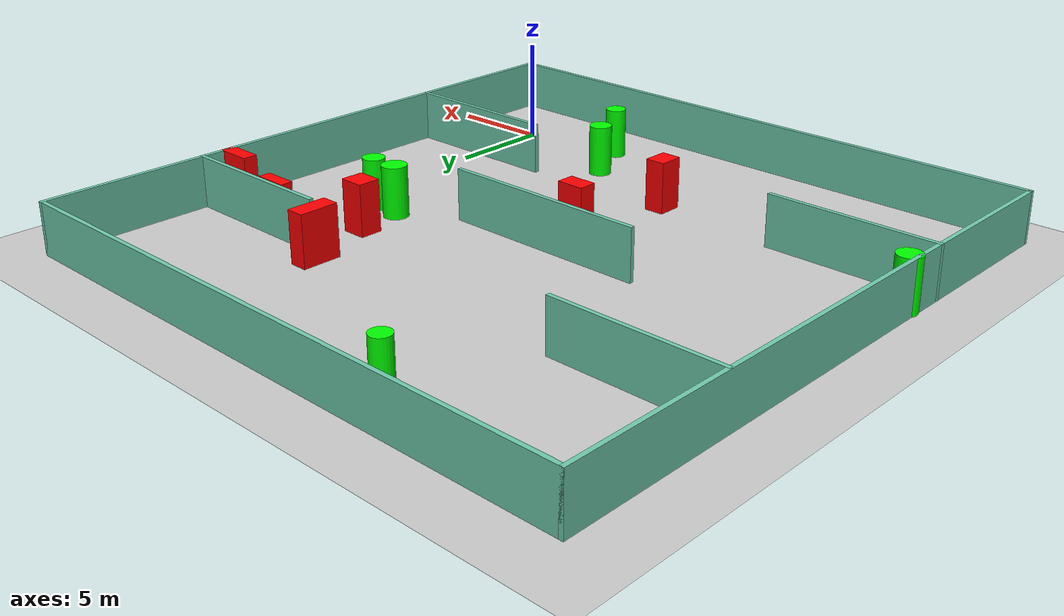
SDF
<sdf version="1.7">
 <world name="default">
  <light name="sun" type="directional">
   <pose>0 0 10 0 -0 0</pose>
   <diffuse>0.8 0.8 0.8 1</diffuse>
   <specular>0.2 0.2 0.2 1</specular>
   <attenuation>
    <range>1000</range>
    <constant>0.9</constant>
    <linear>0.01</linear>
    <quadratic>0.001</quadratic>
   </attenuation>
   <direction>-0.5 0.1 -0.9</direction>
   <spot><inner_angle>0</inner_angle><outer_angle>0</outer_angle><falloff>0</falloff></spot>
  </light>
  <model name="ground_plane">
   <static>1</static>
   <link name="link">
    <collision name="collision">
     <geometry><plane><normal>0 0 1</normal><size>100 100</size></plane></geometry>
     <surface>
      <contact><collide_bitmask>65535</collide_bitmask></contact>
      <friction><ode><mu>100</mu><mu2>50</mu2></ode></friction>
     </surface>
    </collision>
    <visual name="visual">
     <cast_shadows>0</cast_shadows>
     <geometry><plane><normal>0 0 1</normal><size>100 100</size></plane></geometry>
     <material>
      <script><uri>file://media/materials/scripts/gazebo.material</uri><name>Gazebo/Grey</name></script>
     </material>
    </visual>
   </link>
  </model>
  <gravity>0 0 -9.8</gravity>
  <magnetic_field>6e-06 2.3e-05 -4.2e-05</magnetic_field>
  <atmosphere type="adiabatic"/>
  <physics type="ode">
   <max_step_size>0.001</max_step_size>
   <real_time_factor>1</real_time_factor>
   <real_time_update_rate>1000</real_time_update_rate>
  </physics>
  <scene><ambient>0.4 0.4 0.4 1</ambient><background>0.7 0.7 0.7 1</background><shadows>1</shadows></scene>
  <spherical_coordinates>
   <surface_model>EARTH_WGS84</surface_model>
   <latitude_deg>0</latitude_deg>
   <longitude_deg>0</longitude_deg>
   <elevation>0</elevation>
   <heading_deg>0</heading_deg>
  </spherical_coordinates>
  <model name="my_base_walls">
   <link name="Wall_10">
    <collision name="Wall_10_Collision">
     <geometry><box><size>8.2 0.2 2.5</size></box></geometry>
     <pose>0 0 1.25 0 -0 0</pose>
    </collision>
    <visual name="Wall_10_Visual">
     <pose>0 0 1.25 0 -0 0</pose>
     <geometry><box><size>8.2 0.2 2.5</size></box></geometry>
     <material>
      <script><uri>file://media/materials/scripts/gazebo.material</uri><name>Gazebo/Grey</name></script>
      <ambient>0.435294 0.796078 0.67451 1</ambient>
     </material>
     <meta><layer>0</layer></meta>
    </visual>
    <pose>-11 -7 0 0 -0 0</pose>
   </link>
   <link name="Wall_12">
    <collision name="Wall_12_Collision">
     <geometry><box><size>8.2 0.2 2.5</size></box></geometry>
     <pose>0 0 1.25 0 -0 0</pose>
    </collision>
    <visual name="Wall_12_Visual">
     <pose>0 0 1.25 0 -0 0</pose>
     <geometry><box><size>8.2 0.2 2.5</size></box></geometry>
     <material>
      <script><uri>file://media/materials/scripts/gazebo.material</uri><name>Gazebo/Grey</name></script>
      <ambient>0.435294 0.796078 0.67451 1</ambient>
     </material>
     <meta><layer>0</layer></meta>
    </visual>
    <pose>-11 7 0 0 -0 0</pose>
   </link>
   <link name="Wall_14">
    <collision name="Wall_14_Collision">
     <geometry><box><size>8.2 0.2 2.5</size></box></geometry>
     <pose>0 0 1.25 0 -0 0</pose>
    </collision>
    <visual name="Wall_14_Visual">
     <pose>0 0 1.25 0 -0 0</pose>
     <geometry><box><size>8.2 0.2 2.5</size></box></geometry>
     <material>
      <script><uri>file://media/materials/scripts/gazebo.material</uri><name>Gazebo/Grey</name></script>
      <ambient>0.435294 0.796078 0.67451 1</ambient>
     </material>
     <meta><layer>0</layer></meta>
    </visual>
    <pose>11 7 0 0 -0 3.14159</pose>
   </link>
   <link name="Wall_16">
    <collision name="Wall_16_Collision">
     <geometry><box><size>10.2 0.2 2.5</size></box></geometry>
     <pose>0 0 1.25 0 -0 0</pose>
    </collision>
    <visual name="Wall_16_Visual">
     <pose>0 0 1.25 0 -0 0</pose>
     <geometry><box><size>10.2 0.2 2.5</size></box></geometry>
     <material>
      <script><uri>file://media/materials/scripts/gazebo.material</uri><name>Gazebo/Grey</name></script>
      <ambient>0.435294 0.796078 0.67451 1</ambient>
     </material>
     <meta><layer>0</layer></meta>
    </visual>
    <pose>0 0 0 0 -0 3.14159</pose>
   </link>
   <link name="Wall_2">
    <collision name="Wall_2_Collision">
     <geometry><box><size>30.2 0.2 2.5</size></box></geometry>
     <pose>0 0 1.25 0 -0 0</pose>
    </collision>
    <visual name="Wall_2_Visual">
     <pose>0 0 1.25 0 -0 0</pose>
     <geometry><box><size>30.2 0.2 2.5</size></box></geometry>
     <material>
      <script><uri>file://media/materials/scripts/gazebo.material</uri><name>Gazebo/Grey</name></script>
      <ambient>0.435294 0.796078 0.67451 1</ambient>
     </material>
     <meta><layer>0</layer></meta>
    </visual>
    <pose>0 -15 0 0 -0 3.14159</pose>
   </link>
   <link name="Wall_3">
    <collision name="Wall_3_Collision">
     <geometry><box><size>30.2 0.2 2.5</size></box></geometry>
     <pose>0 0 1.25 0 -0 0</pose>
    </collision>
    <visual name="Wall_3_Visual">
     <pose>0 0 1.25 0 -0 0</pose>
     <geometry><box><size>30.2 0.2 2.5</size></box></geometry>
     <material>
      <script><uri>file://media/materials/scripts/gazebo.material</uri><name>Gazebo/Grey</name></script>
      <ambient>0.435294 0.796078 0.67451 1</ambient>
     </material>
     <meta><layer>0</layer></meta>
    </visual>
    <pose>-15 0 0 0 -0 1.5708</pose>
   </link>
   <link name="Wall_4">
    <collision name="Wall_4_Collision">
     <geometry><box><size>30.2 0.2 2.5</size></box></geometry>
     <pose>0 0 1.25 0 -0 0</pose>
    </collision>
    <visual name="Wall_4_Visual">
     <pose>0 0 1.25 0 -0 0</pose>
     <geometry><box><size>30.2 0.2 2.5</size></box></geometry>
     <material>
      <script><uri>file://media/materials/scripts/gazebo.material</uri><name>Gazebo/Grey</name></script>
      <ambient>0.435294 0.796078 0.67451 1</ambient>
     </material>
     <meta><layer>0</layer></meta>
    </visual>
    <pose>0 15 0 0 -0 0</pose>
   </link>
   <link name="Wall_6">
    <collision name="Wall_6_Collision">
     <geometry><box><size>30.2 0.2 2.5</size></box></geometry>
     <pose>0 0 1.25 0 -0 0</pose>
    </collision>
    <visual name="Wall_6_Visual">
     <pose>0 0 1.25 0 -0 0</pose>
     <geometry><box><size>30.2 0.2 2.5</size></box></geometry>
     <material>
      <script><uri>file://media/materials/scripts/gazebo.material</uri><name>Gazebo/Grey</name></script>
      <ambient>0.435294 0.796078 0.67451 1</ambient>
     </material>
     <meta><layer>0</layer></meta>
    </visual>
    <pose>15 0 0 0 -0 1.5708</pose>
   </link>
   <link name="Wall_8">
    <collision name="Wall_8_Collision">
     <geometry><box><size>8.2 0.2 2.5</size></box></geometry>
     <pose>0 0 1.25 0 -0 0</pose>
    </collision>
    <visual name="Wall_8_Visual">
     <pose>0 0 1.25 0 -0 0</pose>
     <geometry><box><size>8.2 0.2 2.5</size></box></geometry>
     <material>
      <script><uri>file://media/materials/scripts/gazebo.material</uri><name>Gazebo/Grey</name></script>
      <ambient>0.435294 0.796078 0.67451 1</ambient>
     </material>
     <meta><layer>0</layer></meta>
    </visual>
    <pose>11 -7 0 0 -0 3.14159</pose>
   </link>
   <static>1</static>
   <pose>-11 11 0 0 -0 0</pose>
  </model>
  <model name="cylinder1">
   <static>1</static>
   <link name="link">
    <inertial>
     <mass>1</mass>
     <inertia><ixx>0.5</ixx><ixy>0</ixy><ixz>0</ixz><iyy>0.5</iyy><iyz>0</iyz><izz>1</izz></inertia>
    </inertial>
    <collision name="collision">
     <geometry><cylinder><radius>0.5547875246228504</radius><length>2.5</length></cylinder></geometry>
    </collision>
    <visual name="visual">
     <geometry><cylinder><radius>0.5547875246228504</radius><length>2.5</length></cylinder></geometry>
     <material>
      <ambient>0 1 0 1</ambient>
      <diffuse>0 1 0 1</diffuse>
      <specular>0.1 0.1 0.1 1</specular>
      <emissive>0 0 0 0</emissive>
     </material>
    </visual>
   </link>
   <pose>-6.4500949915466315 1.8690730219400358 1.25 0 0 0</pose>
  </model>
  <model name="cylinder2">
   <static>1</static>
   <link name="link">
    <inertial>
     <mass>1</mass>
     <inertia><ixx>0.5</ixx><ixy>0</ixy><ixz>0</ixz><iyy>0.5</iyy><iyz>0</iyz><izz>1</izz></inertia>
    </inertial>
    <collision name="collision">
     <geometry><cylinder><radius>0.5748632213571063</radius><length>2.5</length></cylinder></geometry>
    </collision>
    <visual name="visual">
     <geometry><cylinder><radius>0.5748632213571063</radius><length>2.5</length></cylinder></geometry>
     <material>
      <ambient>0 1 0 1</ambient>
      <diffuse>0 1 0 1</diffuse>
      <specular>0.1 0.1 0.1 1</specular>
      <emissive>0 0 0 0</emissive>
     </material>
    </visual>
   </link>
   <pose>-25.60420716865199 5.7057589921864675 1.25 0 0 0</pose>
  </model>
  <model name="cylinder3">
   <static>1</static>
   <link name="link">
    <inertial>
     <mass>1</mass>
     <inertia><ixx>0.5</ixx><ixy>0</ixy><ixz>0</ixz><iyy>0.5</iyy><iyz>0</iyz><izz>1</izz></inertia>
    </inertial>
    <collision name="collision">
     <geometry><cylinder><radius>0.5364596516222858</radius><length>2.5</length></cylinder></geometry>
    </collision>
    <visual name="visual">
     <geometry><cylinder><radius>0.5364596516222858</radius><length>2.5</length></cylinder></geometry>
     <material>
      <ambient>0 1 0 1</ambient>
      <diffuse>0 1 0 1</diffuse>
      <specular>0.1 0.1 0.1 1</specular>
      <emissive>0 0 0 0</emissive>
     </material>
    </visual>
   </link>
   <pose>-1.9188158538743778 12.695340791345279 1.25 0 0 0</pose>
  </model>
  <model name="cylinder4">
   <static>1</static>
   <link name="link">
    <inertial>
     <mass>1</mass>
     <inertia><ixx>0.5</ixx><ixy>0</ixy><ixz>0</ixz><iyy>0.5</iyy><iyz>0</iyz><izz>1</izz></inertia>
    </inertial>
    <collision name="collision">
     <geometry><cylinder><radius>0.47571626258464217</radius><length>2.5</length></cylinder></geometry>
    </collision>
    <visual name="visual">
     <geometry><cylinder><radius>0.47571626258464217</radius><length>2.5</length></cylinder></geometry>
     <material>
      <ambient>0 1 0 1</ambient>
      <diffuse>0 1 0 1</diffuse>
      <specular>0.1 0.1 0.1 1</specular>
      <emissive>0 0 0 0</emissive>
     </material>
    </visual>
   </link>
   <pose>-15.849725858109826 24.152983453723348 1.25 0 0 0</pose>
  </model>
  <model name="cylinder5">
   <static>1</static>
   <link name="link">
    <inertial>
     <mass>1</mass>
     <inertia><ixx>0.5</ixx><ixy>0</ixy><ixz>0</ixz><iyy>0.5</iyy><iyz>0</iyz><izz>1</izz></inertia>
    </inertial>
    <collision name="collision">
     <geometry><cylinder><radius>0.5054040455717614</radius><length>2.5</length></cylinder></geometry>
    </collision>
    <visual name="visual">
     <geometry><cylinder><radius>0.5054040455717614</radius><length>2.5</length></cylinder></geometry>
     <material>
      <ambient>0 1 0 1</ambient>
      <diffuse>0 1 0 1</diffuse>
      <specular>0.1 0.1 0.1 1</specular>
      <emissive>0 0 0 0</emissive>
     </material>
    </visual>
   </link>
   <pose>-5.24151063140804 -0.7206314253814798 1.25 0 0 0</pose>
  </model>
  <model name="cylinder6">
   <static>1</static>
   <link name="link">
    <inertial>
     <mass>1</mass>
     <inertia><ixx>0.5</ixx><ixy>0</ixy><ixz>0</ixz><iyy>0.5</iyy><iyz>0</iyz><izz>1</izz></inertia>
    </inertial>
    <collision name="collision">
     <geometry><cylinder><radius>0.6078007032509198</radius><length>2.5</length></cylinder></geometry>
    </collision>
    <visual name="visual">
     <geometry><cylinder><radius>0.6078007032509198</radius><length>2.5</length></cylinder></geometry>
     <material>
      <ambient>0 1 0 1</ambient>
      <diffuse>0 1 0 1</diffuse>
      <specular>0.1 0.1 0.1 1</specular>
      <emissive>0 0 0 0</emissive>
     </material>
    </visual>
   </link>
   <pose>-3.373569701299239 12.703697551165419 1.25 0 0 0</pose>
  </model>
  <model name="box1">
   <static>1</static>
   <link name="link">
    <inertial>
     <mass>1</mass>
     <inertia><ixx>0.083</ixx><ixy>0</ixy><ixz>0</ixz><iyy>0.083</iyy><iyz>0</iyz><izz>0.083</izz></inertia>
    </inertial>
    <collision name="collision">
     <geometry><box><size>1.3424000196255124 0.8782810741514337 2.5</size></box></geometry>
    </collision>
    <visual name="visual">
     <geometry><box><size>1.3424000196255124 0.8782810741514337 2.5</size></box></geometry>
     <material>
      <ambient>1 0 0 1</ambient>
      <diffuse>1 0 0 1</diffuse>
      <specular>0.1 0.1 0.1 1</specular>
      <emissive>0 0 0 0</emissive>
     </material>
    </visual>
    <sensor name="my_contact" type="contact">
     <contact><collision>box_collision</collision><topic>__default_topic__</topic></contact>
    </sensor>
   </link>
   <pose>-10.949069961029602 8.697001942452063 1.25 0 0 0</pose>
  </model>
  <model name="box2">
   <static>1</static>
   <link name="link">
    <inertial>
     <mass>1</mass>
     <inertia><ixx>0.083</ixx><ixy>0</ixy><ixz>0</ixz><iyy>0.083</iyy><iyz>0</iyz><izz>0.083</izz></inertia>
    </inertial>
    <collision name="collision">
     <geometry><box><size>1.7803900688344276 0.7084807827722768 2.5</size></box></geometry>
    </collision>
    <visual name="visual">
     <geometry><box><size>1.7803900688344276 0.7084807827722768 2.5</size></box></geometry>
     <material>
      <ambient>1 0 0 1</ambient>
      <diffuse>1 0 0 1</diffuse>
      <specular>0.1 0.1 0.1 1</specular>
      <emissive>0 0 0 0</emissive>
     </material>
    </visual>
    <sensor name="my_contact" type="contact">
     <contact><collision>box_collision</collision><topic>__default_topic__</topic></contact>
    </sensor>
   </link>
   <pose>3.181950892317971 16.57836068210526 1.25 0 0 0</pose>
  </model>
  <model name="box3">
   <static>1</static>
   <link name="link">
    <inertial>
     <mass>1</mass>
     <inertia><ixx>0.083</ixx><ixy>0</ixy><ixz>0</ixz><iyy>0.083</iyy><iyz>0</iyz><izz>0.083</izz></inertia>
    </inertial>
    <collision name="collision">
     <geometry><box><size>0.9774194258077422 1.2171161165829227 2.5</size></box></geometry>
    </collision>
    <visual name="visual">
     <geometry><box><size>0.9774194258077422 1.2171161165829227 2.5</size></box></geometry>
     <material>
      <ambient>1 0 0 1</ambient>
      <diffuse>1 0 0 1</diffuse>
      <specular>0.1 0.1 0.1 1</specular>
      <emissive>0 0 0 0</emissive>
     </material>
    </visual>
    <sensor name="my_contact" type="contact">
     <contact><collision>box_collision</collision><topic>__default_topic__</topic></contact>
    </sensor>
   </link>
   <pose>-11.765316232658964 3.593790234361813 1.25 0 0 0</pose>
  </model>
  <model name="box4">
   <static>1</static>
   <link name="link">
    <inertial>
     <mass>1</mass>
     <inertia><ixx>0.083</ixx><ixy>0</ixy><ixz>0</ixz><iyy>0.083</iyy><iyz>0</iyz><izz>0.083</izz></inertia>
    </inertial>
    <collision name="collision">
     <geometry><box><size>1.2112619875374535 1.0939397664365438 2.5</size></box></geometry>
    </collision>
    <visual name="visual">
     <geometry><box><size>1.2112619875374535 1.0939397664365438 2.5</size></box></geometry>
     <material>
      <ambient>1 0 0 1</ambient>
      <diffuse>1 0 0 1</diffuse>
      <specular>0.1 0.1 0.1 1</specular>
      <emissive>0 0 0 0</emissive>
     </material>
    </visual>
    <sensor name="my_contact" type="contact">
     <contact><collision>box_collision</collision><topic>__default_topic__</topic></contact>
    </sensor>
   </link>
   <pose>-3.717848259331113 14.973121624129814 1.25 0 0 0</pose>
  </model>
  <model name="box5">
   <static>1</static>
   <link name="link">
    <inertial>
     <mass>1</mass>
     <inertia><ixx>0.083</ixx><ixy>0</ixy><ixz>0</ixz><iyy>0.083</iyy><iyz>0</iyz><izz>0.083</izz></inertia>
    </inertial>
    <collision name="collision">
     <geometry><box><size>1.633646933704129 0.59365993422227 2.5</size></box></geometry>
    </collision>
    <visual name="visual">
     <geometry><box><size>1.633646933704129 0.59365993422227 2.5</size></box></geometry>
     <material>
      <ambient>1 0 0 1</ambient>
      <diffuse>1 0 0 1</diffuse>
      <specular>0.1 0.1 0.1 1</specular>
      <emissive>0 0 0 0</emissive>
     </material>
    </visual>
    <sensor name="my_contact" type="contact">
     <contact><collision>box_collision</collision><topic>__default_topic__</topic></contact>
    </sensor>
   </link>
   <pose>-0.9716237824777352 17.558218368606763 1.25 0 0 0</pose>
  </model>
  <model name="box6">
   <static>1</static>
   <link name="link">
    <inertial>
     <mass>1</mass>
     <inertia><ixx>0.083</ixx><ixy>0</ixy><ixz>0</ixz><iyy>0.083</iyy><iyz>0</iyz><izz>0.083</izz></inertia>
    </inertial>
    <collision name="collision">
     <geometry><box><size>0.8886041059621193 1.9053788554842104 2.5</size></box></geometry>
    </collision>
    <visual name="visual">
     <geometry><box><size>0.8886041059621193 1.9053788554842104 2.5</size></box></geometry>
     <material>
      <ambient>1 0 0 1</ambient>
      <diffuse>1 0 0 1</diffuse>
      <specular>0.1 0.1 0.1 1</specular>
      <emissive>0 0 0 0</emissive>
     </material>
    </visual>
    <sensor name="my_contact" type="contact">
     <contact><collision>box_collision</collision><topic>__default_topic__</topic></contact>
    </sensor>
   </link>
   <pose>-4.806596749625577 18.47043005547636 1.25 0 0 0</pose>
  </model>
 </world>
</sdf>
